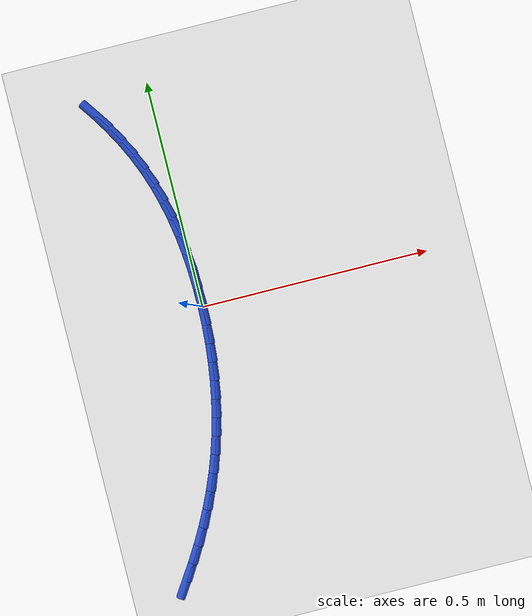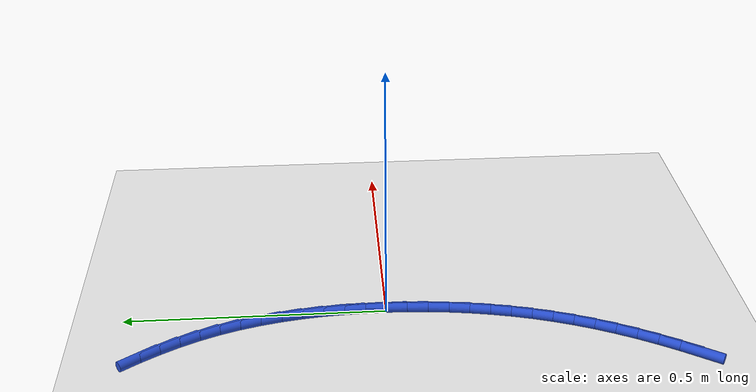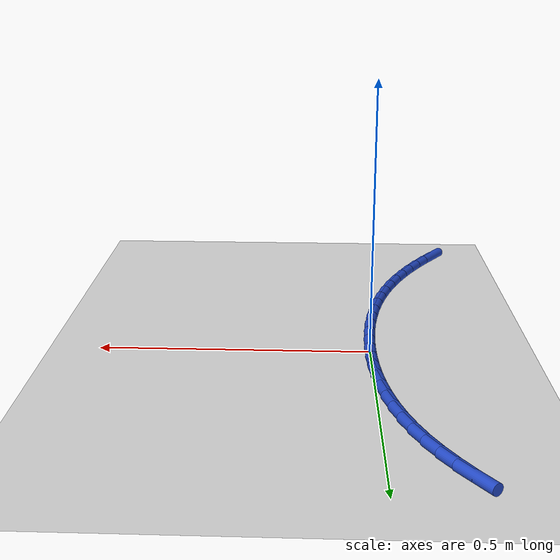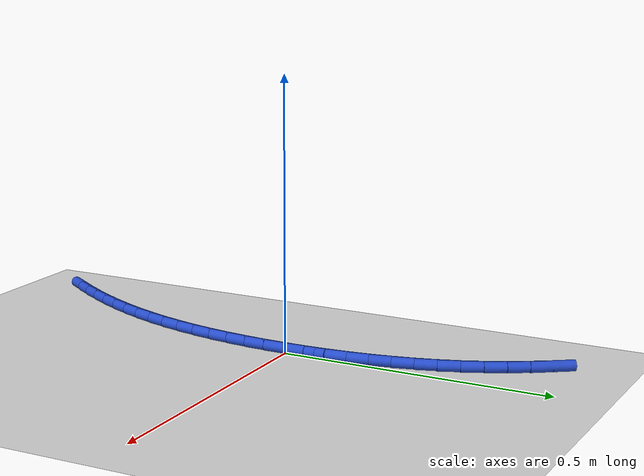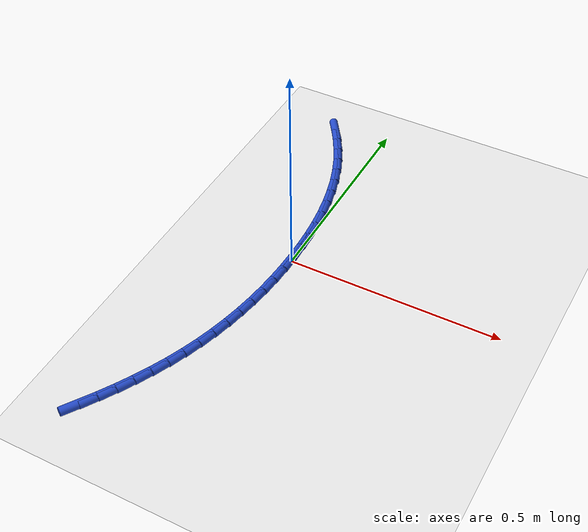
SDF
<sdf version="1.6">
 <world name="default">
  <model name="ground_plane">
   <static>1</static>
   <link name="link">
    <collision name="collision">
     <geometry><plane><normal>0 0 1</normal><size>100 100</size></plane></geometry>
     <surface><friction><ode><mu>100</mu><mu2>50</mu2></ode></friction></surface>
    </collision>
    <visual name="visual">
     <cast_shadows>0</cast_shadows>
     <geometry><plane><normal>0 0 1</normal><size>100 100</size></plane></geometry>
     <material>
      <script><uri>file://media/materials/scripts/gazebo.material</uri><name>Gazebo/WhiteGlow</name></script>
     </material>
    </visual>
   </link>
  </model>
  <model name="line">
   <link name="link_0">
    <pose>9.540979117872439e-18 4.85722573273506e-17 0.01 0 1.57 -1.5647249568563861</pose>
    <collision name="collision">
     <geometry><cylinder><radius>0.01</radius><length>0.08</length></cylinder></geometry>
    </collision>
    <visual name="visual">
     <material>
      <script><name>Gazebo/Blue</name><uri>file://media/materials/scripts/gazebo.material</uri></script>
     </material>
     <geometry><cylinder><radius>0.01</radius><length>0.08</length></cylinder></geometry>
    </visual>
   </link>
   <link name="link_1">
    <pose>-0.00024522059150794277 0.040389167669749496 0.01 0 1.57 -1.5282353189487514</pose>
    <collision name="collision">
     <geometry><cylinder><radius>0.01</radius><length>0.08</length></cylinder></geometry>
    </collision>
    <visual name="visual">
     <material>
      <script><name>Gazebo/Blue</name><uri>file://media/materials/scripts/gazebo.material</uri></script>
     </material>
     <geometry><cylinder><radius>0.01</radius><length>0.08</length></cylinder></geometry>
    </visual>
   </link>
   <link name="link_2">
    <pose>-0.0019650079032921723 0.08077234568125619 0.01 0 1.57 -1.4888661799460283</pose>
    <collision name="collision">
     <geometry><cylinder><radius>0.01</radius><length>0.08</length></cylinder></geometry>
    </collision>
    <visual name="visual">
     <material>
      <script><name>Gazebo/Blue</name><uri>file://media/materials/scripts/gazebo.material</uri></script>
     </material>
     <geometry><cylinder><radius>0.01</radius><length>0.08</length></cylinder></geometry>
    </visual>
   </link>
   <link name="link_3">
    <pose>-0.0052689980199753655 0.1210089887397155 0.01 0 1.57 -1.4463394535777183</pose>
    <collision name="collision">
     <geometry><cylinder><radius>0.01</radius><length>0.08</length></cylinder></geometry>
    </collision>
    <visual name="visual">
     <material>
      <script><name>Gazebo/Blue</name><uri>file://media/materials/scripts/gazebo.material</uri></script>
     </material>
     <geometry><cylinder><radius>0.01</radius><length>0.08</length></cylinder></geometry>
    </visual>
   </link>
   <link name="link_4">
    <pose>-0.010266827026180234 0.16095855155032285 0.01 0 1.57 -1.4003762220411193</pose>
    <collision name="collision">
     <geometry><cylinder><radius>0.01</radius><length>0.08</length></cylinder></geometry>
    </collision>
    <visual name="visual">
     <material>
      <script><name>Gazebo/Blue</name><uri>file://media/materials/scripts/gazebo.material</uri></script>
     </material>
     <geometry><cylinder><radius>0.01</radius><length>0.08</length></cylinder></geometry>
    </visual>
   </link>
   <link name="link_5">
    <pose>-0.017068131006529465 0.20048048881827346 0.01 0 1.57 -1.3507084024429865</pose>
    <collision name="collision">
     <geometry><cylinder><radius>0.01</radius><length>0.08</length></cylinder></geometry>
    </collision>
    <visual name="visual">
     <material>
      <script><name>Gazebo/Blue</name><uri>file://media/materials/scripts/gazebo.material</uri></script>
     </material>
     <geometry><cylinder><radius>0.01</radius><length>0.08</length></cylinder></geometry>
    </visual>
   </link>
   <link name="link_6">
    <pose>-0.025782546045645748 0.23943425524876272 0.01 0 1.57 -1.2970955731137264</pose>
    <collision name="collision">
     <geometry><cylinder><radius>0.01</radius><length>0.08</length></cylinder></geometry>
    </collision>
    <visual name="visual">
     <material>
      <script><name>Gazebo/Blue</name><uri>file://media/materials/scripts/gazebo.material</uri></script>
     </material>
     <geometry><cylinder><radius>0.01</radius><length>0.08</length></cylinder></geometry>
    </visual>
   </link>
   <link name="link_7">
    <pose>-0.0365197082281518 0.27767930554698605 0.01 0 1.57 -1.2393477131960868</pose>
    <collision name="collision">
     <geometry><cylinder><radius>0.01</radius><length>0.08</length></cylinder></geometry>
    </collision>
    <visual name="visual">
     <material>
      <script><name>Gazebo/Blue</name><uri>file://media/materials/scripts/gazebo.material</uri></script>
     </material>
     <geometry><cylinder><radius>0.01</radius><length>0.08</length></cylinder></geometry>
    </visual>
   </link>
   <link name="link_8">
    <pose>-0.04938925363867031 0.31507509441813863 0.01 0 1.57 -1.1773845088528174</pose>
    <collision name="collision">
     <geometry><cylinder><radius>0.01</radius><length>0.08</length></cylinder></geometry>
    </collision>
    <visual name="visual">
     <material>
      <script><name>Gazebo/Blue</name><uri>file://media/materials/scripts/gazebo.material</uri></script>
     </material>
     <geometry><cylinder><radius>0.01</radius><length>0.08</length></cylinder></geometry>
    </visual>
   </link>
   <link name="link_9">
    <pose>-0.06449979524098105 0.35148175419750055 0.01 0 1.57 -1.114518073751251</pose>
    <collision name="collision">
     <geometry><cylinder><radius>0.01</radius><length>0.08</length></cylinder></geometry>
    </collision>
    <visual name="visual">
     <material>
      <script><name>Gazebo/Blue</name><uri>file://media/materials/scripts/gazebo.material</uri></script>
     </material>
     <geometry><cylinder><radius>0.01</radius><length>0.08</length></cylinder></geometry>
    </visual>
   </link>
   <link name="link_10">
    <pose>-0.08185044378320158 0.38683194237335117 0.01 0 1.57 -1.0571779089966264</pose>
    <collision name="collision">
     <geometry><cylinder><radius>0.01</radius><length>0.08</length></cylinder></geometry>
    </collision>
    <visual name="visual">
     <material>
      <script><name>Gazebo/Blue</name><uri>file://media/materials/scripts/gazebo.material</uri></script>
     </material>
     <geometry><cylinder><radius>0.01</radius><length>0.08</length></cylinder></geometry>
    </visual>
   </link>
   <link name="link_11">
    <pose>-0.1012349259210559 0.42119434576117826 0.01 0 1.57 -1.0062442928057733</pose>
    <collision name="collision">
     <geometry><cylinder><radius>0.01</radius><length>0.08</length></cylinder></geometry>
    </collision>
    <visual name="visual">
     <material>
      <script><name>Gazebo/Blue</name><uri>file://media/materials/scripts/gazebo.material</uri></script>
     </material>
     <geometry><cylinder><radius>0.01</radius><length>0.08</length></cylinder></geometry>
    </visual>
   </link>
   <link name="link_12">
    <pose>-0.12242435695128334 0.45465262705855647 0.01 0 1.57 -0.9617375216133484</pose>
    <collision name="collision">
     <geometry><cylinder><radius>0.01</radius><length>0.08</length></cylinder></geometry>
    </collision>
    <visual name="visual">
     <material>
      <script><name>Gazebo/Blue</name><uri>file://media/materials/scripts/gazebo.material</uri></script>
     </material>
     <geometry><cylinder><radius>0.01</radius><length>0.08</length></cylinder></geometry>
    </visual>
   </link>
   <link name="link_165">
    <pose>-0.17580535629244456 -0.5633778385573408 0.01 0 1.57 0.9935454188025418</pose>
    <collision name="collision">
     <geometry><cylinder><radius>0.01</radius><length>0.08</length></cylinder></geometry>
    </collision>
    <visual name="visual">
     <material>
      <script><name>Gazebo/Blue</name><uri>file://media/materials/scripts/gazebo.material</uri></script>
     </material>
     <geometry><cylinder><radius>0.01</radius><length>0.08</length></cylinder></geometry>
    </visual>
   </link>
   <link name="link_166">
    <pose>-0.15398824578404505 -0.5298772904648663 0.01 0 1.57 1.0274939548153512</pose>
    <collision name="collision">
     <geometry><cylinder><radius>0.01</radius><length>0.08</length></cylinder></geometry>
    </collision>
    <visual name="visual">
     <material>
      <script><name>Gazebo/Blue</name><uri>file://media/materials/scripts/gazebo.material</uri></script>
     </material>
     <geometry><cylinder><radius>0.01</radius><length>0.08</length></cylinder></geometry>
    </visual>
   </link>
   <link name="link_167">
    <pose>-0.13330037780459578 -0.49562174217469507 0.01 0 1.57 1.0632284976731243</pose>
    <collision name="collision">
     <geometry><cylinder><radius>0.01</radius><length>0.08</length></cylinder></geometry>
    </collision>
    <visual name="visual">
     <material>
      <script><name>Gazebo/Blue</name><uri>file://media/materials/scripts/gazebo.material</uri></script>
     </material>
     <geometry><cylinder><radius>0.01</radius><length>0.08</length></cylinder></geometry>
    </visual>
   </link>
   <link name="link_168">
    <pose>-0.11384967932620366 -0.4606491579077971 0.01 0 1.57 1.1008904974727114</pose>
    <collision name="collision">
     <geometry><cylinder><radius>0.01</radius><length>0.08</length></cylinder></geometry>
    </collision>
    <visual name="visual">
     <material>
      <script><name>Gazebo/Blue</name><uri>file://media/materials/scripts/gazebo.material</uri></script>
     </material>
     <geometry><cylinder><radius>0.01</radius><length>0.08</length></cylinder></geometry>
    </visual>
   </link>
   <link name="link_169">
    <pose>-0.09574407732097545 -0.42499750188514224 0.01 0 1.57 1.1406152615879885</pose>
    <collision name="collision">
     <geometry><cylinder><radius>0.01</radius><length>0.08</length></cylinder></geometry>
    </collision>
    <visual name="visual">
     <material>
      <script><name>Gazebo/Blue</name><uri>file://media/materials/scripts/gazebo.material</uri></script>
     </material>
     <geometry><cylinder><radius>0.01</radius><length>0.08</length></cylinder></geometry>
    </visual>
   </link>
   <link name="link_170">
    <pose>-0.07909149876101772 -0.3887047383276996 0.01 0 1.57 1.1825275727127291</pose>
    <collision name="collision">
     <geometry><cylinder><radius>0.01</radius><length>0.08</length></cylinder></geometry>
    </collision>
    <visual name="visual">
     <material>
      <script><name>Gazebo/Blue</name><uri>file://media/materials/scripts/gazebo.material</uri></script>
     </material>
     <geometry><cylinder><radius>0.01</radius><length>0.08</length></cylinder></geometry>
    </visual>
   </link>
   <link name="link_171">
    <pose>-0.063999870618438 -0.3518088314564406 0.01 0 1.57 1.226499634315418</pose>
    <collision name="collision">
     <geometry><cylinder><radius>0.01</radius><length>0.08</length></cylinder></geometry>
    </collision>
    <visual name="visual">
     <material>
      <script><name>Gazebo/Blue</name><uri>file://media/materials/scripts/gazebo.material</uri></script>
     </material>
     <geometry><cylinder><radius>0.01</radius><length>0.08</length></cylinder></geometry>
    </visual>
   </link>
   <link name="link_172">
    <pose>-0.05056737055291623 -0.3143484254611967 0.01 0 1.57 1.2704327286751604</pose>
    <collision name="collision">
     <geometry><cylinder><radius>0.01</radius><length>0.08</length></cylinder></geometry>
    </collision>
    <visual name="visual">
     <material>
      <script><name>Gazebo/Blue</name><uri>file://media/materials/scripts/gazebo.material</uri></script>
     </material>
     <geometry><cylinder><radius>0.01</radius><length>0.08</length></cylinder></geometry>
    </visual>
   </link>
   <link name="link_173">
    <pose>-0.03880362101232436 -0.2763683408429051 0.01 0 1.57 1.3131385669383353</pose>
    <collision name="collision">
     <geometry><cylinder><radius>0.01</radius><length>0.08</length></cylinder></geometry>
    </collision>
    <visual name="visual">
     <material>
      <script><name>Gazebo/Blue</name><uri>file://media/materials/scripts/gazebo.material</uri></script>
     </material>
     <geometry><cylinder><radius>0.01</radius><length>0.08</length></cylinder></geometry>
    </visual>
   </link>
   <link name="link_174">
    <pose>-0.028671030506062015 -0.23791669105349533 0.01 0 1.57 1.3545662736095114</pose>
    <collision name="collision">
     <geometry><cylinder><radius>0.01</radius><length>0.08</length></cylinder></geometry>
    </collision>
    <visual name="visual">
     <material>
      <script><name>Gazebo/Blue</name><uri>file://media/materials/scripts/gazebo.material</uri></script>
     </material>
     <geometry><cylinder><radius>0.01</radius><length>0.08</length></cylinder></geometry>
    </visual>
   </link>
   <link name="link_175">
    <pose>-0.020131566405746888 -0.1990416203121893 0.01 0 1.57 1.3946954159127227</pose>
    <collision name="collision">
     <geometry><cylinder><radius>0.01</radius><length>0.08</length></cylinder></geometry>
    </collision>
    <visual name="visual">
     <material>
      <script><name>Gazebo/Blue</name><uri>file://media/materials/scripts/gazebo.material</uri></script>
     </material>
     <geometry><cylinder><radius>0.01</radius><length>0.08</length></cylinder></geometry>
    </visual>
   </link>
   <link name="link_176">
    <pose>-0.013147196082996589 -0.1597912728382088 0.01 0 1.57 1.433523207600298</pose>
    <collision name="collision">
     <geometry><cylinder><radius>0.01</radius><length>0.08</length></cylinder></geometry>
    </collision>
    <visual name="visual">
     <material>
      <script><name>Gazebo/Blue</name><uri>file://media/materials/scripts/gazebo.material</uri></script>
     </material>
     <geometry><cylinder><radius>0.01</radius><length>0.08</length></cylinder></geometry>
    </visual>
   </link>
   <link name="link_177">
    <pose>-0.0076798869094291166 -0.12021379285077771 0.01 0 1.57 1.4710622462772058</pose>
    <collision name="collision">
     <geometry><cylinder><radius>0.01</radius><length>0.08</length></cylinder></geometry>
    </collision>
    <visual name="visual">
     <material>
      <script><name>Gazebo/Blue</name><uri>file://media/materials/scripts/gazebo.material</uri></script>
     </material>
     <geometry><cylinder><radius>0.01</radius><length>0.08</length></cylinder></geometry>
    </visual>
   </link>
   <link name="link_178">
    <pose>-0.003691606256662039 -0.0803573245691176 0.01 0 1.57 1.5073382287950174</pose>
    <collision name="collision">
     <geometry><cylinder><radius>0.01</radius><length>0.08</length></cylinder></geometry>
    </collision>
    <visual name="visual">
     <material>
      <script><name>Gazebo/Blue</name><uri>file://media/materials/scripts/gazebo.material</uri></script>
     </material>
     <geometry><cylinder><radius>0.01</radius><length>0.08</length></cylinder></geometry>
    </visual>
   </link>
   <link name="link_179">
    <pose>-0.0011443214963130846 -0.0402700122124508 0.01 0 1.57 1.5423877523632628</pose>
    <collision name="collision">
     <geometry><cylinder><radius>0.01</radius><length>0.08</length></cylinder></geometry>
    </collision>
    <visual name="visual">
     <material>
      <script><name>Gazebo/Blue</name><uri>file://media/materials/scripts/gazebo.material</uri></script>
     </material>
     <geometry><cylinder><radius>0.01</radius><length>0.08</length></cylinder></geometry>
    </visual>
   </link>
   <link name="link_180">
    <pose>2.42861286636753e-17 2.8449465006019636e-16 0.01 0 1.57 -1.565336376128849</pose>
    <collision name="collision">
     <geometry><cylinder><radius>0.01</radius><length>0.08</length></cylinder></geometry>
    </collision>
    <visual name="visual">
     <material>
      <script><name>Gazebo/Blue</name><uri>file://media/materials/scripts/gazebo.material</uri></script>
     </material>
     <geometry><cylinder><radius>0.01</radius><length>0.08</length></cylinder></geometry>
    </visual>
   </link>
   <link name="link_181">
    <pose>-0.00022060913934043684 0.04040456784901328 0.01 0 1.57 -1.5653363761288495</pose>
    <collision name="collision">
     <geometry><cylinder><radius>0.01</radius><length>0.08</length></cylinder></geometry>
    </collision>
    <visual name="visual">
     <material>
      <script><name>Gazebo/Blue</name><uri>file://media/materials/scripts/gazebo.material</uri></script>
     </material>
     <geometry><cylinder><radius>0.01</radius><length>0.08</length></cylinder></geometry>
    </visual>
   </link>
  </model>
 </world>
</sdf>
